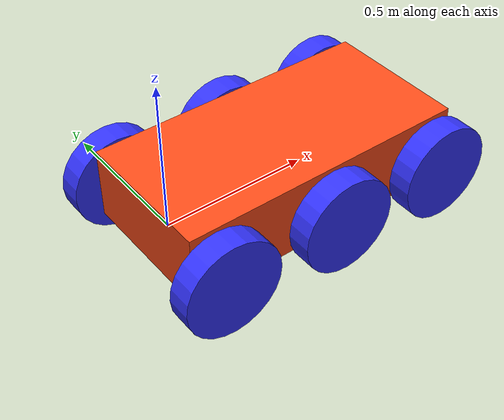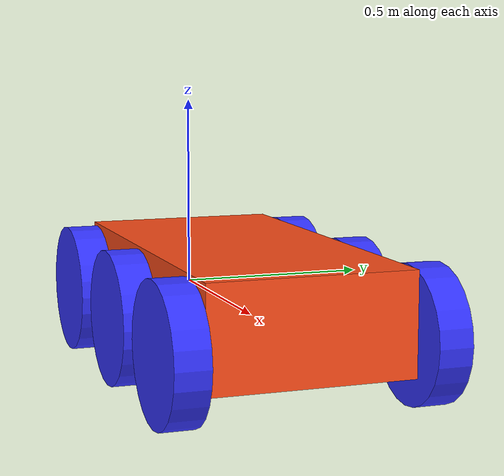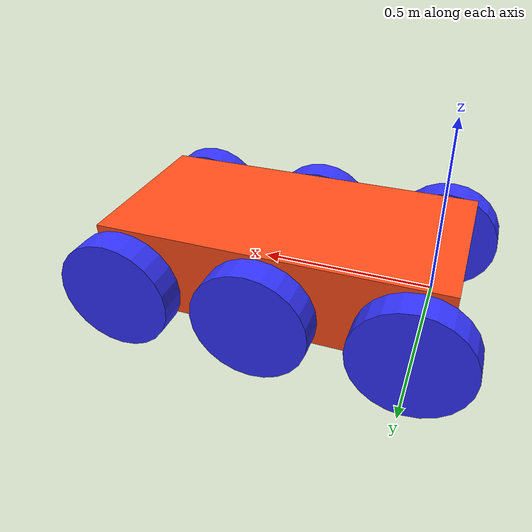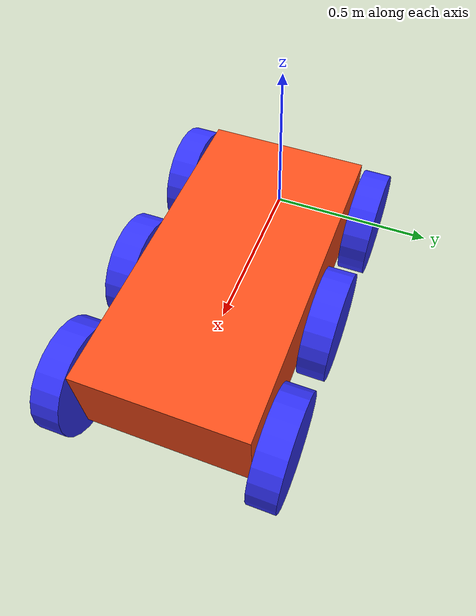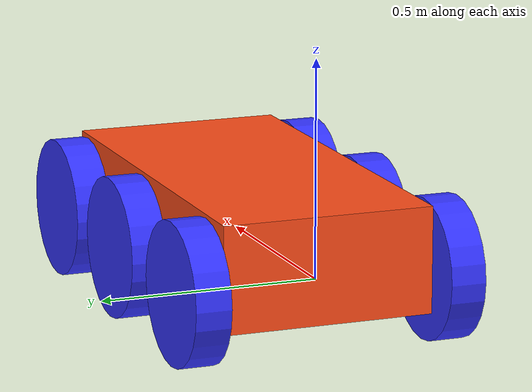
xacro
<?xml version="1.0"?>
<robot xmlns:xacro="http://www.ros.org/wiki/xacro" >

    <xacro:include filename="inertial_macros.xacro"/>

    <xacro:property name="chassis_length" value="0.99"/>
    <xacro:property name="chassis_width" value="0.495"/>
    <xacro:property name="chassis_height" value="0.2475"/>
    <xacro:property name="chassis_mass" value="1.0"/>
    <xacro:property name="wheel_radius" value="0.165"/>
    <xacro:property name="wheel_thickness" value="0.0825"/>
    <xacro:property name="wheel_mass" value="0.05"/>

    <xacro:property name="wheel_offset_x" value="0.0825"/>
    <xacro:property name="wheel_offset_y" value="0.3"/>
    <xacro:property name="wheel_offset_z" value="0.0825"/>

    <xacro:property name="wheelcenter_offset_x" value="0.4225"/>
    <xacro:property name="wheelcenter_offset_y" value="0.3"/>
    <xacro:property name="wheelcenter_offset_z" value="0.0"/>

    <xacro:property name="wheelfront_offset_x" value="0.825"/>
    <xacro:property name="wheelfront_offset_y" value="0.3"/>
    <xacro:property name="wheelfront_offset_z" value="0.0"/>

    <material name="white">
        <color rgba="1 1 1 1" />
    </material>

    <material name="orange">
        <color rgba="1 0.3 0.1 1"/>
    </material>

    <material name="blue">
        <color rgba="0.2 0.2 1 1"/>
    </material>

    <material name="black">
        <color rgba="0 0 0 1"/>
    </material>

    <material name="red">
        <color rgba="1 0 0 1"/>
    </material>

    <!-- BASE LINK -->

    <link name="base_link">

    </link>

    <!-- BASE_FOOTPRINT LINK -->

    <joint name="base_footprint_joint" type="fixed">
        <parent link="base_link"/>
        <child link="base_footprint"/>
        <origin xyz="0 0 0" rpy="0 0 0"/>
    </joint>

    <link name="base_footprint">
    </link>

    <!-- CHASSIS LINK -->

    <joint name="chassis_joint" type="fixed">
        <parent link="base_link"/>
        <child link="chassis"/>
        <origin xyz="${-wheel_offset_x} 0 ${-wheel_offset_z}"/>
    </joint>

    <link name="chassis">
        <visual>
            <origin xyz="${chassis_length/2} 0 ${chassis_height/2}"/>
            <geometry>
                <box size="${chassis_length} ${chassis_width} ${chassis_height}"/>
            </geometry>
            <material name="orange"/>
        </visual>
        <collision>
            <origin xyz="${chassis_length/2} 0 ${chassis_height/2}"/>
            <geometry>
                <box size="${chassis_length} ${chassis_width} ${chassis_height}"/>
            </geometry>
        </collision>
        <xacro:inertial_box mass="0.5" x="${chassis_length}" y="${chassis_width}" z="${chassis_height}">
            <origin xyz="${chassis_length/2} 0 ${chassis_height/2}" rpy="0 0 0"/>
        </xacro:inertial_box>
    </link>

    <gazebo reference="chassis">
        <material>Gazebo/Orange</material>
    </gazebo>

    <!-- LEFT WHEEL LINK -->

    <joint name="left_wheel_joint" type="continuous">
        <parent link="base_link"/>
        <child link="left_wheel"/>
        <origin xyz="0 ${wheel_offset_y} 0" rpy="-${pi/2} 0 0" />
        <axis xyz="0 0 1"/>
    </joint>

    <link name="left_wheel">
        <visual>
            <geometry>
                <cylinder radius="${wheel_radius}" length="${wheel_thickness}"/>
            </geometry>
            <material name="blue"/>
        </visual>
        <collision>
            <geometry>
                <sphere radius="${wheel_radius}"/>
            </geometry>
        </collision>
        <xacro:inertial_cylinder mass="${wheel_mass}" length="${wheel_thickness}" radius="${wheel_radius}">
            <origin xyz="0 0 0" rpy="0 0 0"/>
        </xacro:inertial_cylinder>
    </link>

    <gazebo reference="left_wheel">
        <material>Gazebo/Blue</material>
    </gazebo>

    <!-- RIGHT WHEEL LINK -->

    <joint name="right_wheel_joint" type="continuous">
        <parent link="base_link"/>
        <child link="right_wheel"/>
        <origin xyz="0 ${-wheel_offset_y} 0" rpy="${pi/2} 0 0" />
        <axis xyz="0 0 -1"/>
    </joint>

    <link name="right_wheel">
        <visual>
            <geometry>
                <cylinder radius="${wheel_radius}" length="${wheel_thickness}"/>
            </geometry>
            <material name="blue"/>
        </visual>
        <collision>
            <geometry>
                <sphere radius="${wheel_radius}"/>
            </geometry>
        </collision>
        <xacro:inertial_cylinder mass="${wheel_mass}" length="${wheel_thickness}" radius="${wheel_radius}">
            <origin xyz="0 0 0" rpy="0 0 0"/>
        </xacro:inertial_cylinder>
    </link>

    <gazebo reference="right_wheel">
        <material>Gazebo/Blue</material>
    </gazebo>

    <!-- LEFT CENTER WHEEL LINK -->

    <joint name="left_center_wheel_joint" type="fixed">
        <parent link="base_link"/>
        <child link="left_center_wheel"/>
        <origin xyz="${wheelcenter_offset_x} ${wheelcenter_offset_y} ${wheelcenter_offset_z}" rpy="-${pi/2} 0 0" />
        <axis xyz="0 0 1"/>
    </joint>

    <link name="left_center_wheel">
        <visual>
            <geometry>
                <cylinder radius="${wheel_radius}" length="${wheel_thickness}"/>
            </geometry>
            <material name="blue"/>
        </visual>
        <collision>
            <geometry>
                <sphere radius="${wheel_radius}"/>
            </geometry>
        </collision>
        <xacro:inertial_cylinder mass="${wheel_mass}" length="${wheel_thickness}" radius="${wheel_radius}">
            <origin xyz="0 0 0" rpy="0 0 0"/>
        </xacro:inertial_cylinder>
    </link>

    <gazebo reference="left_center_wheel">
        <mu1 value="0.001"/>
        <mu2 value="0.001"/>
        <material>Gazebo/Blue</material>
    </gazebo>

    <!-- RIGHT CENTER WHEEL LINK -->

    <joint name="right_center_wheel_joint" type="fixed">
        <parent link="base_link"/>
        <child link="right_center_wheel"/>
        <origin xyz="${wheelcenter_offset_x} ${-wheelcenter_offset_y} ${wheelcenter_offset_z}" rpy="${pi/2} 0 0" />
        <axis xyz="0 0 -1"/>
    </joint>

    <link name="right_center_wheel">
        <visual>
            <geometry>
                <cylinder radius="${wheel_radius}" length="${wheel_thickness}"/>
            </geometry>
            <material name="blue"/>
        </visual>
        <collision>
            <geometry>
                <sphere radius="${wheel_radius}"/>
            </geometry>
        </collision>
        <xacro:inertial_cylinder mass="${wheel_mass}" length="${wheel_thickness}" radius="${wheel_radius}">
            <origin xyz="0 0 0" rpy="0 0 0"/>
        </xacro:inertial_cylinder>
    </link>

    <gazebo reference="right_center_wheel">
        <material>Gazebo/Blue</material>
        <mu1 value="0.001"/>
        <mu2 value="0.001"/>
    </gazebo>

    <!-- LEFT FRONT WHEEL LINK -->

    <joint name="left_front_wheel_joint" type="fixed">
        <parent link="base_link"/>
        <child link="left_front_wheel"/>
        <origin xyz="${wheelfront_offset_x} ${wheelfront_offset_y} ${wheelfront_offset_z}" rpy="-${pi/2} 0 0" />
        <axis xyz="0 0 1"/>
    </joint>

    <link name="left_front_wheel">
        <visual>
            <geometry>
                <cylinder radius="${wheel_radius}" length="${wheel_thickness}"/>
            </geometry>
            <material name="blue"/>
        </visual>
        <collision>
            <geometry>
                <sphere radius="${wheel_radius}"/>
            </geometry>
        </collision>
        <xacro:inertial_cylinder mass="${wheel_mass}" length="${wheel_thickness}" radius="${wheel_radius}">
            <origin xyz="0 0 0" rpy="0 0 0"/>
        </xacro:inertial_cylinder>
    </link>

    <gazebo reference="left_front_wheel">
        <material>Gazebo/Blue</material>
        <mu1 value="0.001"/>
        <mu2 value="0.001"/>
    </gazebo>

    <!-- RIGHT FRONT WHEEL LINK -->

    <joint name="right_front_wheel_joint" type="fixed">
        <parent link="base_link"/>
        <child link="right_front_wheel"/>
        <origin xyz="${wheelfront_offset_x} ${-wheelfront_offset_y} ${wheelfront_offset_z}" rpy="${pi/2} 0 0" />
        <axis xyz="0 0 -1"/>
    </joint>

    <link name="right_front_wheel">
        <visual>
            <geometry>
                <cylinder radius="${wheel_radius}" length="${wheel_thickness}"/>
            </geometry>
            <material name="blue"/>
        </visual>
        <collision>
            <geometry>
                <sphere radius="${wheel_radius}"/>
            </geometry>
        </collision>
        <xacro:inertial_cylinder mass="${wheel_mass}" length="${wheel_thickness}" radius="${wheel_radius}">
            <origin xyz="0 0 0" rpy="0 0 0"/>
        </xacro:inertial_cylinder>
    </link>

    <gazebo reference="right_front_wheel">
        <material>Gazebo/Blue</material>
        <mu1 value="0.001"/>
        <mu2 value="0.001"/>
    </gazebo>

</robot>
